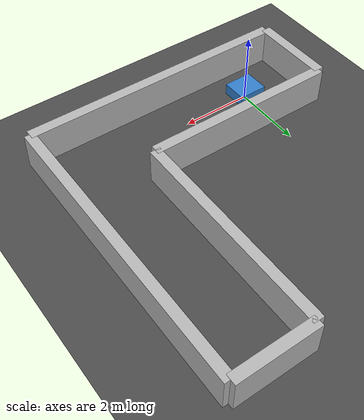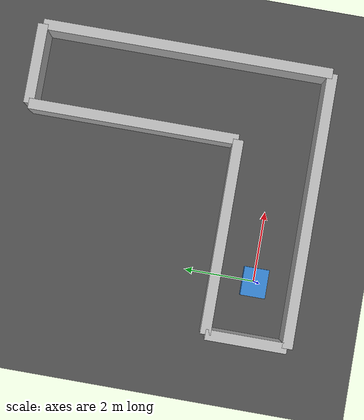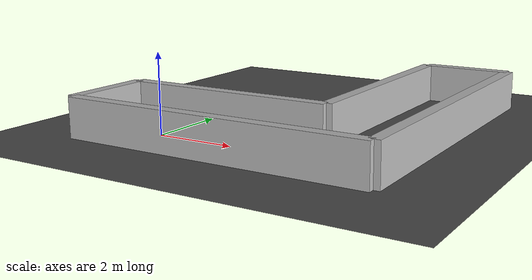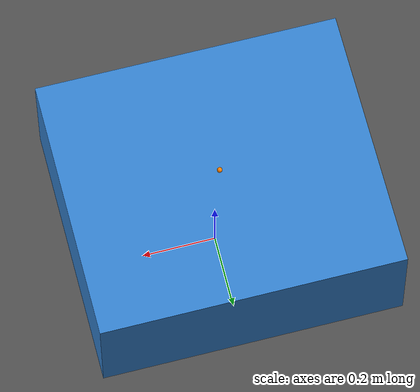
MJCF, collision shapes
<?xml version="1.0" encoding="utf-8"?>

<mujoco model="agv_nav2_test_l_corner">

  <!--
    meshdir được tính tương đối từ models/agv_spawn.xml.
    Thư mục meshes nằm ngang hàng với models.
  -->
  <compiler
    angle="degree"
    meshdir="../meshes"
    autolimits="true"/>

  <option
    timestep="0.002"
    gravity="0 0 -9.81"
    integrator="implicitfast"/>

  <visual>
    <headlight
      ambient="0.4 0.4 0.4"
      diffuse="0.8 0.8 0.8"
      specular="0.1 0.1 0.1"/>
  </visual>

  <statistic
    center="0 0 0.2"
    extent="1.5"/>

  <default>

    <joint
      damping="0.1"
      armature="0.001"/>

    <!-- Visual mesh không tham gia collision -->
    <default class="visual">
      <geom
        type="mesh"
        contype="0"
        conaffinity="0"
        density="0"
        group="2"/>
    </default>

    <!-- Collision geometry dùng primitive đơn giản -->
    <default class="collision">
      <geom
        group="3"
        friction="1.0 0.005 0.0001"
        solref="0.005 1"
        solimp="0.9 0.95 0.001"/>
    </default>

  </default>

  <asset>

    <texture
      name="ground_texture"
      type="2d"
      builtin="checker"
      rgb1="0.25 0.25 0.25"
      rgb2="0.35 0.35 0.35"
      width="512"
      height="512"/>

    <material
      name="ground_material"
      texture="ground_texture"
      texrepeat="5 5"
      reflectance="0.05"/>

    <mesh
      name="base_link_mesh"
      file="Base_Link.stl"/>

    <mesh
      name="left_wheel_mesh"
      file="Left_Wheel.stl"/>

    <mesh
      name="right_wheel_mesh"
      file="Right_Wheel.stl"/>

    <mesh
      name="lidar_mesh"
      file="Lidar.stl"/>

    <mesh
      name="mam_xoay_mesh"
      file="Mam_xoay.stl"/>

  </asset>

  <worldbody>

    <light
      name="main_light"
      pos="0 0 4"
      dir="0 0 -1"
      directional="true"/>

    <geom
      name="floor"
      type="plane"
      group="0"
      size="80 30 0.1"
      material="ground_material"
      friction="1.0 0.005 0.0001"/>

    <!-- Compact Nav2 test arena: L corridor. -->
    <include file="nav2_test_l_corner_environment.xml"/>

    <!--
      Base_Link là thân vật lý chính.

      Giá trị z=0.15 chỉ là vị trí thả robot ban đầu.
      Robot sẽ rơi xuống sàn theo trọng lực.
    -->
    <body
      name="Base_Link"
      pos="0 0 0.15">

      <!-- Cho phép robot chuyển động tự do trong không gian -->
      <freejoint name="base_freejoint"/>

      <!--
        Khối lượng này tạm lấy từ URDF.
        Chưa dùng để kết luận Sim2Real.
      -->
      <inertial
        pos="-0.000061 -0.014856 0.039725"
        mass="10.228"
        diaginertia="0.51173 0.61846 1.0521"/>

      <!-- Mesh chỉ dùng hiển thị -->
      <geom
        name="base_visual"
        class="visual"
        mesh="base_link_mesh"
        rgba="0.75 0.75 0.75 1"/>

      <!--
        Collision dùng box thay vì STL nhiều tam giác.

        center của mesh:
        x = -0.0175
        y = -0.014007
        z = 0.090031

        size trong MuJoCo là half-size.
      -->
      <geom
        name="base_collision"
        class="collision"
        type="box"
        pos="-0.0175 -0.014007 0.090031"
        size="0.410 0.357 0.16297"
        mass="0"
        rgba="0.2 0.5 0.8 0.15"/>

      <site
        name="Base_footprint"
        type="sphere"
        pos="-0.0175 -0.014007 -0.0925"
        size="0.008"
        rgba="0 1 0 1"/>

            <!--
        IMU cố định với Base_Link, nằm tại tâm khu vực mâm xoay.

        imu_site là con trực tiếp của Base_Link, không nằm bên trong
        body Mam_xoay. Vì vậy IMU không quay theo mâm.
      -->
      <site
        name="imu_site"
        type="sphere"
        pos="-0.017238 -0.013326 0.27615"
        size="0.007"
        rgba="1 0.5 0 1"/>

      <body
        name="caster_front_left"
        pos="0.3175 0.152993 -0.0675">

        <joint
          name="caster_front_left_ball_joint"
          type="ball"
          damping="0.001"/>

        <geom
          name="caster_front_left_collision"
          class="collision"
          type="sphere"
          size="0.025"
          mass="0.03"
          friction="0.35 0.002 0.0001"
          rgba="0.1 0.8 0.2 0.25"/>

      </body>

      <body
        name="caster_front_right"
        pos="0.3175 -0.181007 -0.0675">

        <joint
          name="caster_front_right_ball_joint"
          type="ball"
          damping="0.001"/>

        <geom
          name="caster_front_right_collision"
          class="collision"
          type="sphere"
          size="0.025"
          mass="0.03"
          friction="0.35 0.002 0.0001"
          rgba="0.1 0.8 0.2 0.25"/>

      </body>

      <body
        name="caster_rear_left"
        pos="-0.3525 0.152993 -0.0675">

        <joint
          name="caster_rear_left_ball_joint"
          type="ball"
          damping="0.001"/>

        <geom
          name="caster_rear_left_collision"
          class="collision"
          type="sphere"
          size="0.025"
          mass="0.03"
          friction="0.35 0.002 0.0001"
          rgba="0.1 0.8 0.2 0.25"/>

      </body>

      <body
        name="caster_rear_right"
        pos="-0.3525 -0.181007 -0.0675">

        <joint
          name="caster_rear_right_ball_joint"
          type="ball"
          damping="0.001"/>

        <geom
          name="caster_rear_right_collision"
          class="collision"
          type="sphere"
          size="0.025"
          mass="0.03"
          friction="0.35 0.002 0.0001"
          rgba="0.1 0.8 0.2 0.25"/>

      </body>

      <!-- Bánh trái -->
      <body
        name="Left_Wheel"
        pos="-0.0055001 0.27899 0.0075">

        <joint
          name="Left_Wheel_jt"
          type="hinge"
          axis="0 1 0"
          limited="false"
          damping="0.2"/>

        <inertial
          pos="0 0.019997 0"
          mass="0.8908"
          diaginertia="0.0029235 0.0056311 0.0029235"/>

        <geom
          name="left_wheel_visual"
          class="visual"
          mesh="left_wheel_mesh"
          rgba="0.15 0.15 0.15 1"/>

        <!--
          Cylinder mặc định có trục theo Z.
          Quay 90 độ quanh X để trục cylinder nằm theo Y.
        -->
        <geom
          name="left_wheel_collision"
          class="collision"
          type="cylinder"
          size="0.1 0.02"
          euler="90 0 0"
          mass="0"
          friction="1.2 0.01 0.0001"
          rgba="1 0 0 0.2"/>

      </body>

      <!-- Bánh phải -->
      <body
        name="Right_Wheel"
        pos="-0.0055011 -0.30701 0.0075">

        <joint
          name="Right_Wheel_jt"
          type="hinge"
          axis="0 1 0"
          limited="false"
          damping="0.2"/>

        <inertial
          pos="0 -0.019997 0"
          mass="0.8908"
          diaginertia="0.0029235 0.0056311 0.0029235"/>

        <geom
          name="right_wheel_visual"
          class="visual"
          mesh="right_wheel_mesh"
          rgba="0.15 0.15 0.15 1"/>

        <geom
          name="right_wheel_collision"
          class="collision"
          type="cylinder"
          size="0.1 0.02"
          euler="90 0 0"
          mass="0"
          friction="1.2 0.01 0.0001"
          rgba="1 0 0 0.2"/>

      </body>

      <!-- LiDAR 2D: bridge ray-cast từ site lidar_origin. -->
      <body
        name="Lidar"
        pos="0.3305 -0.015607 0.094">

        <geom
          name="lidar_visual"
          class="visual"
          mesh="lidar_mesh"
          rgba="0.3 0.3 0.3 1"/>

        <!-- +X là góc 0 rad, +Y là chiều tăng góc theo REP-103. -->
        <site
          name="lidar_origin"
          type="sphere"
          pos="0 0 0.02"
          size="0.006"
          rgba="1 0 0 1"/>

      </body>

      <!-- Mâm xoay đang fixed giống URDF -->
      <body
        name="Mam_xoay"
        pos="-0.017238 -0.013326 0.27615">

        <geom
          name="mam_xoay_visual"
          class="visual"
          mesh="mam_xoay_mesh"
          rgba="0.79 0.82 0.93 1"/>

      </body>

    </body>

  </worldbody>

  <sensor>

      <!-- Vận tốc góc trong frame local của imu_site, rad/s -->
    <gyro
      name="imu_gyro"
      site="imu_site"/>

      <!-- Gia tốc tuyến tính tại vị trí imu_site, m/s^2 -->
    <accelerometer
      name="imu_accelerometer"
      site="imu_site"/>

      <!-- Quaternion orientation của imu_site trong world MuJoCo -->
    <framequat
      name="imu_orientation"
      objtype="site"
      objname="imu_site"/>

  </sensor>
  <!--
    Hai actuator này chưa nhận /cmd_vel.
    Khi spawn, ctrl mặc định bằng 0 nên bánh chưa quay.
  -->
  <actuator>

    <velocity
      name="left_wheel_motor"
      joint="Left_Wheel_jt"
      kv="20"
      ctrlrange="-8 8"
      forcerange="-3 3"/>

    <velocity
      name="right_wheel_motor"
      joint="Right_Wheel_jt"
      kv="20"
      ctrlrange="-8 8"
      forcerange="-3 3"/>

  </actuator>

</mujoco>

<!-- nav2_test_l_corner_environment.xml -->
<!-- Generated Nav2 test arena: L corridor. -->
<mujocoinclude>
  <geom name="l_corner_rear_wall" group="0" pos="-1.65 0 0.5" size="0.15 1.15 0.5" type="box" rgba="0.72 0.72 0.72 1" friction="1.0 0.005 0.0001"/>
  <geom name="l_corner_bottom_wall" group="0" pos="2.25 -1.15 0.5" size="3.9 0.15 0.5" type="box" rgba="0.72 0.72 0.72 1" friction="1.0 0.005 0.0001"/>
  <geom name="l_corner_inner_horizontal" group="0" pos="1.1 1.15 0.5" size="2.75 0.15 0.5" type="box" rgba="0.72 0.72 0.72 1" friction="1.0 0.005 0.0001"/>
  <geom name="l_corner_inner_vertical" group="0" pos="3.85 4.15 0.5" size="0.15 3 0.5" type="box" rgba="0.72 0.72 0.72 1" friction="1.0 0.005 0.0001"/>
  <geom name="l_corner_outer_vertical" group="0" pos="6.15 3 0.5" size="0.15 4.15 0.5" type="box" rgba="0.72 0.72 0.72 1" friction="1.0 0.005 0.0001"/>
  <geom name="l_corner_top_wall" group="0" pos="5 7.15 0.5" size="1.15 0.15 0.5" type="box" rgba="0.72 0.72 0.72 1" friction="1.0 0.005 0.0001"/>
</mujocoinclude>
